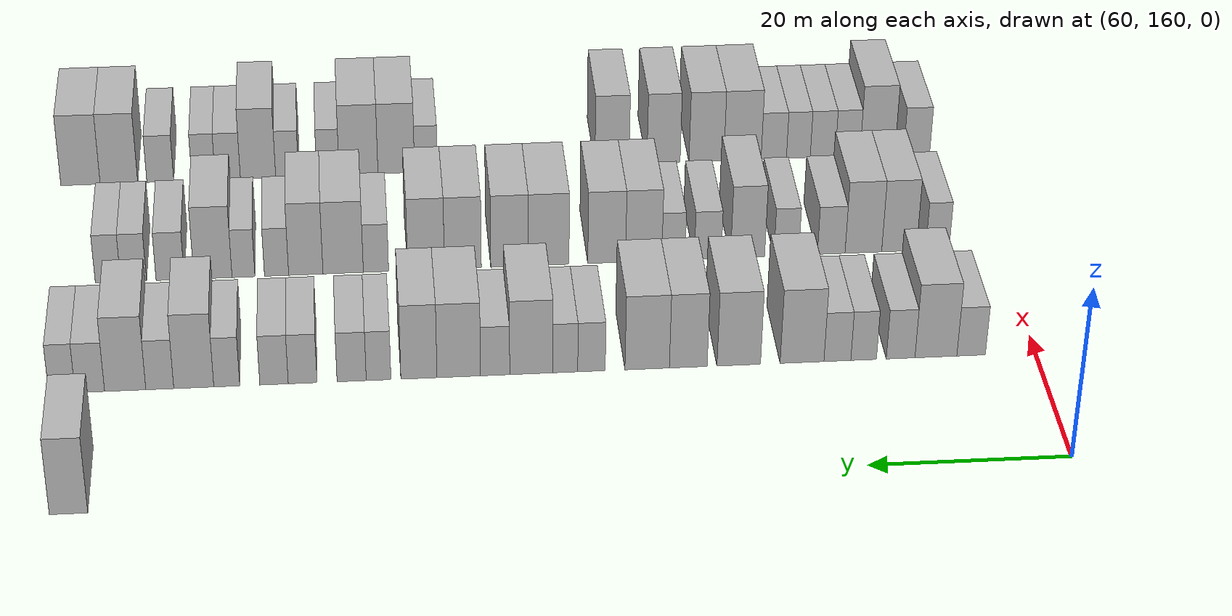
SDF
<sdf version="1.6">
 <world name="default">
  <model name="building_504">
   <static>1</static>
   <pose>63.0000 256.5765 0 0.000000 0.000000 0.000000</pose>
   <link name="link">
    <pose>0 0 4.50 0 0 0</pose>
    <collision name="collision"><geometry><box><size>10.0000 3.6197 9.0000</size></box></geometry></collision>
    <visual name="visual">
     <cast_shadows>0</cast_shadows>
     <geometry><box><size>10.0000 3.6197 9.0000</size></box></geometry>
     <material>
      <script>
       <uri>model://HANNAS_wall/materials/scripts</uri>
       <uri>model://HANNAS_wall/materials/textures</uri>
       <name>vrc/HANNAS_wall</name>
      </script>
     </material>
    </visual>
   </link>
  </model>
  <model name="building_655">
   <static>1</static>
   <pose>82.0000 166.6512 0 0.000000 0.000000 0.000000</pose>
   <link name="link">
    <pose>0 0 3.00 0 0 0</pose>
    <collision name="collision"><geometry><box><size>10.0000 2.9291 6.0000</size></box></geometry></collision>
    <visual name="visual">
     <cast_shadows>0</cast_shadows>
     <geometry><box><size>10.0000 2.9291 6.0000</size></box></geometry>
     <material>
      <script>
       <uri>model://HANNAS_wall/materials/scripts</uri>
       <uri>model://HANNAS_wall/materials/textures</uri>
       <name>vrc/HANNAS_wall</name>
      </script>
     </material>
    </visual>
   </link>
  </model>
  <model name="building_656">
   <static>1</static>
   <pose>82.0000 170.2599 0 0.000000 0.000000 0.000000</pose>
   <link name="link">
    <pose>0 0 4.50 0 0 0</pose>
    <collision name="collision"><geometry><box><size>10.0000 4.2883 9.0000</size></box></geometry></collision>
    <visual name="visual">
     <cast_shadows>0</cast_shadows>
     <geometry><box><size>10.0000 4.2883 9.0000</size></box></geometry>
     <material>
      <script>
       <uri>model://HANNAS_wall/materials/scripts</uri>
       <uri>model://HANNAS_wall/materials/textures</uri>
       <name>vrc/HANNAS_wall</name>
      </script>
     </material>
    </visual>
   </link>
  </model>
  <model name="building_657">
   <static>1</static>
   <pose>82.0000 173.8707 0 0.000000 0.000000 0.000000</pose>
   <link name="link">
    <pose>0 0 3.00 0 0 0</pose>
    <collision name="collision"><geometry><box><size>10.0000 2.9333 6.0000</size></box></geometry></collision>
    <visual name="visual">
     <cast_shadows>0</cast_shadows>
     <geometry><box><size>10.0000 2.9333 6.0000</size></box></geometry>
     <material>
      <script>
       <uri>model://HANNAS_wall/materials/scripts</uri>
       <uri>model://HANNAS_wall/materials/textures</uri>
       <name>vrc/HANNAS_wall</name>
      </script>
     </material>
    </visual>
   </link>
  </model>
  <model name="building_658">
   <static>1</static>
   <pose>82.0000 177.6490 0 0.000000 0.000000 0.000000</pose>
   <link name="link">
    <pose>0 0 3.00 0 0 0</pose>
    <collision name="collision"><geometry><box><size>10.0000 2.6233 6.0000</size></box></geometry></collision>
    <visual name="visual">
     <cast_shadows>0</cast_shadows>
     <geometry><box><size>10.0000 2.6233 6.0000</size></box></geometry>
     <material>
      <script>
       <uri>model://HANNAS_wall/materials/scripts</uri>
       <uri>model://HANNAS_wall/materials/textures</uri>
       <name>vrc/HANNAS_wall</name>
      </script>
     </material>
    </visual>
   </link>
  </model>
  <model name="building_659">
   <static>1</static>
   <pose>82.0000 180.3321 0 0.000000 0.000000 0.000000</pose>
   <link name="link">
    <pose>0 0 3.00 0 0 0</pose>
    <collision name="collision"><geometry><box><size>10.0000 2.7430 6.0000</size></box></geometry></collision>
    <visual name="visual">
     <cast_shadows>0</cast_shadows>
     <geometry><box><size>10.0000 2.7430 6.0000</size></box></geometry>
     <material>
      <script>
       <uri>model://HANNAS_wall/materials/scripts</uri>
       <uri>model://HANNAS_wall/materials/textures</uri>
       <name>vrc/HANNAS_wall</name>
      </script>
     </material>
    </visual>
   </link>
  </model>
  <model name="building_660">
   <static>1</static>
   <pose>82.0000 183.9355 0 0.000000 0.000000 0.000000</pose>
   <link name="link">
    <pose>0 0 4.50 0 0 0</pose>
    <collision name="collision"><geometry><box><size>10.0000 4.4637 9.0000</size></box></geometry></collision>
    <visual name="visual">
     <cast_shadows>0</cast_shadows>
     <geometry><box><size>10.0000 4.4637 9.0000</size></box></geometry>
     <material>
      <script>
       <uri>model://HANNAS_wall/materials/scripts</uri>
       <uri>model://HANNAS_wall/materials/textures</uri>
       <name>vrc/HANNAS_wall</name>
      </script>
     </material>
    </visual>
   </link>
  </model>
  <model name="building_661">
   <static>1</static>
   <pose>82.0000 190.3796 0 0.000000 0.000000 0.000000</pose>
   <link name="link">
    <pose>0 0 4.50 0 0 0</pose>
    <collision name="collision"><geometry><box><size>10.0000 4.4247 9.0000</size></box></geometry></collision>
    <visual name="visual">
     <cast_shadows>0</cast_shadows>
     <geometry><box><size>10.0000 4.4247 9.0000</size></box></geometry>
     <material>
      <script>
       <uri>model://HANNAS_wall/materials/scripts</uri>
       <uri>model://HANNAS_wall/materials/textures</uri>
       <name>vrc/HANNAS_wall</name>
      </script>
     </material>
    </visual>
   </link>
  </model>
  <model name="building_662">
   <static>1</static>
   <pose>82.0000 195.5095 0 0.000000 0.000000 0.000000</pose>
   <link name="link">
    <pose>0 0 4.50 0 0 0</pose>
    <collision name="collision"><geometry><box><size>10.0000 3.8349 9.0000</size></box></geometry></collision>
    <visual name="visual">
     <cast_shadows>0</cast_shadows>
     <geometry><box><size>10.0000 3.8349 9.0000</size></box></geometry>
     <material>
      <script>
       <uri>model://HANNAS_wall/materials/scripts</uri>
       <uri>model://HANNAS_wall/materials/textures</uri>
       <name>vrc/HANNAS_wall</name>
      </script>
     </material>
    </visual>
   </link>
  </model>
  <model name="building_663">
   <static>1</static>
   <pose>82.0000 199.6753 0 0.000000 0.000000 0.000000</pose>
   <link name="link">
    <pose>0 0 4.50 0 0 0</pose>
    <collision name="collision"><geometry><box><size>10.0000 4.4968 9.0000</size></box></geometry></collision>
    <visual name="visual">
     <cast_shadows>0</cast_shadows>
     <geometry><box><size>10.0000 4.4968 9.0000</size></box></geometry>
     <material>
      <script>
       <uri>model://HANNAS_wall/materials/scripts</uri>
       <uri>model://HANNAS_wall/materials/textures</uri>
       <name>vrc/HANNAS_wall</name>
      </script>
     </material>
    </visual>
   </link>
  </model>
  <model name="building_664">
   <static>1</static>
   <pose>82.0000 205.3127 0 0.000000 0.000000 0.000000</pose>
   <link name="link">
    <pose>0 0 3.00 0 0 0</pose>
    <collision name="collision"><geometry><box><size>10.0000 2.7779 6.0000</size></box></geometry></collision>
    <visual name="visual">
     <cast_shadows>0</cast_shadows>
     <geometry><box><size>10.0000 2.7779 6.0000</size></box></geometry>
     <material>
      <script>
       <uri>model://HANNAS_wall/materials/scripts</uri>
       <uri>model://HANNAS_wall/materials/textures</uri>
       <name>vrc/HANNAS_wall</name>
      </script>
     </material>
    </visual>
   </link>
  </model>
  <model name="building_665">
   <static>1</static>
   <pose>82.0000 207.9608 0 0.000000 0.000000 0.000000</pose>
   <link name="link">
    <pose>0 0 3.00 0 0 0</pose>
    <collision name="collision"><geometry><box><size>10.0000 2.5184 6.0000</size></box></geometry></collision>
    <visual name="visual">
     <cast_shadows>0</cast_shadows>
     <geometry><box><size>10.0000 2.5184 6.0000</size></box></geometry>
     <material>
      <script>
       <uri>model://HANNAS_wall/materials/scripts</uri>
       <uri>model://HANNAS_wall/materials/textures</uri>
       <name>vrc/HANNAS_wall</name>
      </script>
     </material>
    </visual>
   </link>
  </model>
  <model name="building_666">
   <static>1</static>
   <pose>82.0000 211.3915 0 0.000000 0.000000 0.000000</pose>
   <link name="link">
    <pose>0 0 4.50 0 0 0</pose>
    <collision name="collision"><geometry><box><size>10.0000 4.3431 9.0000</size></box></geometry></collision>
    <visual name="visual">
     <cast_shadows>0</cast_shadows>
     <geometry><box><size>10.0000 4.3431 9.0000</size></box></geometry>
     <material>
      <script>
       <uri>model://HANNAS_wall/materials/scripts</uri>
       <uri>model://HANNAS_wall/materials/textures</uri>
       <name>vrc/HANNAS_wall</name>
      </script>
     </material>
    </visual>
   </link>
  </model>
  <model name="building_667">
   <static>1</static>
   <pose>82.0000 215.0327 0 0.000000 0.000000 0.000000</pose>
   <link name="link">
    <pose>0 0 3.00 0 0 0</pose>
    <collision name="collision"><geometry><box><size>10.0000 2.9393 6.0000</size></box></geometry></collision>
    <visual name="visual">
     <cast_shadows>0</cast_shadows>
     <geometry><box><size>10.0000 2.9393 6.0000</size></box></geometry>
     <material>
      <script>
       <uri>model://HANNAS_wall/materials/scripts</uri>
       <uri>model://HANNAS_wall/materials/textures</uri>
       <name>vrc/HANNAS_wall</name>
      </script>
     </material>
    </visual>
   </link>
  </model>
  <model name="building_668">
   <static>1</static>
   <pose>82.0000 218.6918 0 0.000000 0.000000 0.000000</pose>
   <link name="link">
    <pose>0 0 4.50 0 0 0</pose>
    <collision name="collision"><geometry><box><size>10.0000 4.3788 9.0000</size></box></geometry></collision>
    <visual name="visual">
     <cast_shadows>0</cast_shadows>
     <geometry><box><size>10.0000 4.3788 9.0000</size></box></geometry>
     <material>
      <script>
       <uri>model://HANNAS_wall/materials/scripts</uri>
       <uri>model://HANNAS_wall/materials/textures</uri>
       <name>vrc/HANNAS_wall</name>
      </script>
     </material>
    </visual>
   </link>
  </model>
  <model name="building_669">
   <static>1</static>
   <pose>82.0000 222.6955 0 0.000000 0.000000 0.000000</pose>
   <link name="link">
    <pose>0 0 4.50 0 0 0</pose>
    <collision name="collision"><geometry><box><size>10.0000 3.6286 9.0000</size></box></geometry></collision>
    <visual name="visual">
     <cast_shadows>0</cast_shadows>
     <geometry><box><size>10.0000 3.6286 9.0000</size></box></geometry>
     <material>
      <script>
       <uri>model://HANNAS_wall/materials/scripts</uri>
       <uri>model://HANNAS_wall/materials/textures</uri>
       <name>vrc/HANNAS_wall</name>
      </script>
     </material>
    </visual>
   </link>
  </model>
  <model name="building_670">
   <static>1</static>
   <pose>82.0000 226.7478 0 0.000000 0.000000 0.000000</pose>
   <link name="link">
    <pose>0 0 3.00 0 0 0</pose>
    <collision name="collision"><geometry><box><size>10.0000 2.4759 6.0000</size></box></geometry></collision>
    <visual name="visual">
     <cast_shadows>0</cast_shadows>
     <geometry><box><size>10.0000 2.4759 6.0000</size></box></geometry>
     <material>
      <script>
       <uri>model://HANNAS_wall/materials/scripts</uri>
       <uri>model://HANNAS_wall/materials/textures</uri>
       <name>vrc/HANNAS_wall</name>
      </script>
     </material>
    </visual>
   </link>
  </model>
  <model name="building_671">
   <static>1</static>
   <pose>82.0000 229.4458 0 0.000000 0.000000 0.000000</pose>
   <link name="link">
    <pose>0 0 3.00 0 0 0</pose>
    <collision name="collision"><geometry><box><size>10.0000 2.9202 6.0000</size></box></geometry></collision>
    <visual name="visual">
     <cast_shadows>0</cast_shadows>
     <geometry><box><size>10.0000 2.9202 6.0000</size></box></geometry>
     <material>
      <script>
       <uri>model://HANNAS_wall/materials/scripts</uri>
       <uri>model://HANNAS_wall/materials/textures</uri>
       <name>vrc/HANNAS_wall</name>
      </script>
     </material>
    </visual>
   </link>
  </model>
  <model name="building_672">
   <static>1</static>
   <pose>82.0000 234.3489 0 0.000000 0.000000 0.000000</pose>
   <link name="link">
    <pose>0 0 3.00 0 0 0</pose>
    <collision name="collision"><geometry><box><size>10.0000 2.8859 6.0000</size></box></geometry></collision>
    <visual name="visual">
     <cast_shadows>0</cast_shadows>
     <geometry><box><size>10.0000 2.8859 6.0000</size></box></geometry>
     <material>
      <script>
       <uri>model://HANNAS_wall/materials/scripts</uri>
       <uri>model://HANNAS_wall/materials/textures</uri>
       <name>vrc/HANNAS_wall</name>
      </script>
     </material>
    </visual>
   </link>
  </model>
  <model name="building_673">
   <static>1</static>
   <pose>82.0000 237.2113 0 0.000000 0.000000 0.000000</pose>
   <link name="link">
    <pose>0 0 3.00 0 0 0</pose>
    <collision name="collision"><geometry><box><size>10.0000 2.8389 6.0000</size></box></geometry></collision>
    <visual name="visual">
     <cast_shadows>0</cast_shadows>
     <geometry><box><size>10.0000 2.8389 6.0000</size></box></geometry>
     <material>
      <script>
       <uri>model://HANNAS_wall/materials/scripts</uri>
       <uri>model://HANNAS_wall/materials/textures</uri>
       <name>vrc/HANNAS_wall</name>
      </script>
     </material>
    </visual>
   </link>
  </model>
  <model name="building_674">
   <static>1</static>
   <pose>82.0000 241.9272 0 0.000000 0.000000 0.000000</pose>
   <link name="link">
    <pose>0 0 3.00 0 0 0</pose>
    <collision name="collision"><geometry><box><size>10.0000 2.5930 6.0000</size></box></geometry></collision>
    <visual name="visual">
     <cast_shadows>0</cast_shadows>
     <geometry><box><size>10.0000 2.5930 6.0000</size></box></geometry>
     <material>
      <script>
       <uri>model://HANNAS_wall/materials/scripts</uri>
       <uri>model://HANNAS_wall/materials/textures</uri>
       <name>vrc/HANNAS_wall</name>
      </script>
     </material>
    </visual>
   </link>
  </model>
  <model name="building_675">
   <static>1</static>
   <pose>82.0000 245.2169 0 0.000000 0.000000 0.000000</pose>
   <link name="link">
    <pose>0 0 4.50 0 0 0</pose>
    <collision name="collision"><geometry><box><size>10.0000 3.9865 9.0000</size></box></geometry></collision>
    <visual name="visual">
     <cast_shadows>0</cast_shadows>
     <geometry><box><size>10.0000 3.9865 9.0000</size></box></geometry>
     <material>
      <script>
       <uri>model://HANNAS_wall/materials/scripts</uri>
       <uri>model://HANNAS_wall/materials/textures</uri>
       <name>vrc/HANNAS_wall</name>
      </script>
     </material>
    </visual>
   </link>
  </model>
  <model name="building_676">
   <static>1</static>
   <pose>82.0000 248.6009 0 0.000000 0.000000 0.000000</pose>
   <link name="link">
    <pose>0 0 3.00 0 0 0</pose>
    <collision name="collision"><geometry><box><size>10.0000 2.7814 6.0000</size></box></geometry></collision>
    <visual name="visual">
     <cast_shadows>0</cast_shadows>
     <geometry><box><size>10.0000 2.7814 6.0000</size></box></geometry>
     <material>
      <script>
       <uri>model://HANNAS_wall/materials/scripts</uri>
       <uri>model://HANNAS_wall/materials/textures</uri>
       <name>vrc/HANNAS_wall</name>
      </script>
     </material>
    </visual>
   </link>
  </model>
  <model name="building_677">
   <static>1</static>
   <pose>82.0000 252.0395 0 0.000000 0.000000 0.000000</pose>
   <link name="link">
    <pose>0 0 4.50 0 0 0</pose>
    <collision name="collision"><geometry><box><size>10.0000 4.0957 9.0000</size></box></geometry></collision>
    <visual name="visual">
     <cast_shadows>0</cast_shadows>
     <geometry><box><size>10.0000 4.0957 9.0000</size></box></geometry>
     <material>
      <script>
       <uri>model://HANNAS_wall/materials/scripts</uri>
       <uri>model://HANNAS_wall/materials/textures</uri>
       <name>vrc/HANNAS_wall</name>
      </script>
     </material>
    </visual>
   </link>
  </model>
  <model name="building_678">
   <static>1</static>
   <pose>82.0000 255.5500 0 0.000000 0.000000 0.000000</pose>
   <link name="link">
    <pose>0 0 3.00 0 0 0</pose>
    <collision name="collision"><geometry><box><size>10.0000 2.9252 6.0000</size></box></geometry></collision>
    <visual name="visual">
     <cast_shadows>0</cast_shadows>
     <geometry><box><size>10.0000 2.9252 6.0000</size></box></geometry>
     <material>
      <script>
       <uri>model://HANNAS_wall/materials/scripts</uri>
       <uri>model://HANNAS_wall/materials/textures</uri>
       <name>vrc/HANNAS_wall</name>
      </script>
     </material>
    </visual>
   </link>
  </model>
  <model name="building_679">
   <static>1</static>
   <pose>82.0000 258.3167 0 0.000000 0.000000 0.000000</pose>
   <link name="link">
    <pose>0 0 3.00 0 0 0</pose>
    <collision name="collision"><geometry><box><size>10.0000 2.6082 6.0000</size></box></geometry></collision>
    <visual name="visual">
     <cast_shadows>0</cast_shadows>
     <geometry><box><size>10.0000 2.6082 6.0000</size></box></geometry>
     <material>
      <script>
       <uri>model://HANNAS_wall/materials/scripts</uri>
       <uri>model://HANNAS_wall/materials/textures</uri>
       <name>vrc/HANNAS_wall</name>
      </script>
     </material>
    </visual>
   </link>
  </model>
  <model name="building_831">
   <static>1</static>
   <pose>101.0000 166.6531 0 0.000000 0.000000 0.000000</pose>
   <link name="link">
    <pose>0 0 3.00 0 0 0</pose>
    <collision name="collision"><geometry><box><size>10.0000 2.5217 6.0000</size></box></geometry></collision>
    <visual name="visual">
     <cast_shadows>0</cast_shadows>
     <geometry><box><size>10.0000 2.5217 6.0000</size></box></geometry>
     <material>
      <script>
       <uri>model://HANNAS_wall/materials/scripts</uri>
       <uri>model://HANNAS_wall/materials/textures</uri>
       <name>vrc/HANNAS_wall</name>
      </script>
     </material>
    </visual>
   </link>
  </model>
  <model name="building_832">
   <static>1</static>
   <pose>101.0000 170.7813 0 0.000000 0.000000 0.000000</pose>
   <link name="link">
    <pose>0 0 4.50 0 0 0</pose>
    <collision name="collision"><geometry><box><size>10.0000 3.7348 9.0000</size></box></geometry></collision>
    <visual name="visual">
     <cast_shadows>0</cast_shadows>
     <geometry><box><size>10.0000 3.7348 9.0000</size></box></geometry>
     <material>
      <script>
       <uri>model://HANNAS_wall/materials/scripts</uri>
       <uri>model://HANNAS_wall/materials/textures</uri>
       <name>vrc/HANNAS_wall</name>
      </script>
     </material>
    </visual>
   </link>
  </model>
  <model name="building_833">
   <static>1</static>
   <pose>101.0000 174.6163 0 0.000000 0.000000 0.000000</pose>
   <link name="link">
    <pose>0 0 4.50 0 0 0</pose>
    <collision name="collision"><geometry><box><size>10.0000 3.9351 9.0000</size></box></geometry></collision>
    <visual name="visual">
     <cast_shadows>0</cast_shadows>
     <geometry><box><size>10.0000 3.9351 9.0000</size></box></geometry>
     <material>
      <script>
       <uri>model://HANNAS_wall/materials/scripts</uri>
       <uri>model://HANNAS_wall/materials/textures</uri>
       <name>vrc/HANNAS_wall</name>
      </script>
     </material>
    </visual>
   </link>
  </model>
  <model name="building_834">
   <static>1</static>
   <pose>101.0000 178.0666 0 0.000000 0.000000 0.000000</pose>
   <link name="link">
    <pose>0 0 3.00 0 0 0</pose>
    <collision name="collision"><geometry><box><size>10.0000 2.9654 6.0000</size></box></geometry></collision>
    <visual name="visual">
     <cast_shadows>0</cast_shadows>
     <geometry><box><size>10.0000 2.9654 6.0000</size></box></geometry>
     <material>
      <script>
       <uri>model://HANNAS_wall/materials/scripts</uri>
       <uri>model://HANNAS_wall/materials/textures</uri>
       <name>vrc/HANNAS_wall</name>
      </script>
     </material>
    </visual>
   </link>
  </model>
  <model name="building_835">
   <static>1</static>
   <pose>101.0000 182.8773 0 0.000000 0.000000 0.000000</pose>
   <link name="link">
    <pose>0 0 3.00 0 0 0</pose>
    <collision name="collision"><geometry><box><size>10.0000 2.6560 6.0000</size></box></geometry></collision>
    <visual name="visual">
     <cast_shadows>0</cast_shadows>
     <geometry><box><size>10.0000 2.6560 6.0000</size></box></geometry>
     <material>
      <script>
       <uri>model://HANNAS_wall/materials/scripts</uri>
       <uri>model://HANNAS_wall/materials/textures</uri>
       <name>vrc/HANNAS_wall</name>
      </script>
     </material>
    </visual>
   </link>
  </model>
  <model name="building_836">
   <static>1</static>
   <pose>101.0000 187.0284 0 0.000000 0.000000 0.000000</pose>
   <link name="link">
    <pose>0 0 4.50 0 0 0</pose>
    <collision name="collision"><geometry><box><size>10.0000 3.6461 9.0000</size></box></geometry></collision>
    <visual name="visual">
     <cast_shadows>0</cast_shadows>
     <geometry><box><size>10.0000 3.6461 9.0000</size></box></geometry>
     <material>
      <script>
       <uri>model://HANNAS_wall/materials/scripts</uri>
       <uri>model://HANNAS_wall/materials/textures</uri>
       <name>vrc/HANNAS_wall</name>
      </script>
     </material>
    </visual>
   </link>
  </model>
  <model name="building_837">
   <static>1</static>
   <pose>101.0000 191.2860 0 0.000000 0.000000 0.000000</pose>
   <link name="link">
    <pose>0 0 3.00 0 0 0</pose>
    <collision name="collision"><geometry><box><size>10.0000 2.8691 6.0000</size></box></geometry></collision>
    <visual name="visual">
     <cast_shadows>0</cast_shadows>
     <geometry><box><size>10.0000 2.8691 6.0000</size></box></geometry>
     <material>
      <script>
       <uri>model://HANNAS_wall/materials/scripts</uri>
       <uri>model://HANNAS_wall/materials/textures</uri>
       <name>vrc/HANNAS_wall</name>
      </script>
     </material>
    </visual>
   </link>
  </model>
  <model name="building_838">
   <static>1</static>
   <pose>101.0000 194.9580 0 0.000000 0.000000 0.000000</pose>
   <link name="link">
    <pose>0 0 3.00 0 0 0</pose>
    <collision name="collision"><geometry><box><size>10.0000 2.4750 6.0000</size></box></geometry></collision>
    <visual name="visual">
     <cast_shadows>0</cast_shadows>
     <geometry><box><size>10.0000 2.4750 6.0000</size></box></geometry>
     <material>
      <script>
       <uri>model://HANNAS_wall/materials/scripts</uri>
       <uri>model://HANNAS_wall/materials/textures</uri>
       <name>vrc/HANNAS_wall</name>
      </script>
     </material>
    </visual>
   </link>
  </model>
  <model name="building_839">
   <static>1</static>
   <pose>101.0000 198.1276 0 0.000000 0.000000 0.000000</pose>
   <link name="link">
    <pose>0 0 4.50 0 0 0</pose>
    <collision name="collision"><geometry><box><size>10.0000 3.8642 9.0000</size></box></geometry></collision>
    <visual name="visual">
     <cast_shadows>0</cast_shadows>
     <geometry><box><size>10.0000 3.8642 9.0000</size></box></geometry>
     <material>
      <script>
       <uri>model://HANNAS_wall/materials/scripts</uri>
       <uri>model://HANNAS_wall/materials/textures</uri>
       <name>vrc/HANNAS_wall</name>
      </script>
     </material>
    </visual>
   </link>
  </model>
  <model name="building_840">
   <static>1</static>
   <pose>101.0000 202.0664 0 0.000000 0.000000 0.000000</pose>
   <link name="link">
    <pose>0 0 4.50 0 0 0</pose>
    <collision name="collision"><geometry><box><size>10.0000 4.0134 9.0000</size></box></geometry></collision>
    <visual name="visual">
     <cast_shadows>0</cast_shadows>
     <geometry><box><size>10.0000 4.0134 9.0000</size></box></geometry>
     <material>
      <script>
       <uri>model://HANNAS_wall/materials/scripts</uri>
       <uri>model://HANNAS_wall/materials/textures</uri>
       <name>vrc/HANNAS_wall</name>
      </script>
     </material>
    </visual>
   </link>
  </model>
  <model name="building_841">
   <static>1</static>
   <pose>101.0000 208.2307 0 0.000000 0.000000 0.000000</pose>
   <link name="link">
    <pose>0 0 4.50 0 0 0</pose>
    <collision name="collision"><geometry><box><size>10.0000 4.3152 9.0000</size></box></geometry></collision>
    <visual name="visual">
     <cast_shadows>0</cast_shadows>
     <geometry><box><size>10.0000 4.3152 9.0000</size></box></geometry>
     <material>
      <script>
       <uri>model://HANNAS_wall/materials/scripts</uri>
       <uri>model://HANNAS_wall/materials/textures</uri>
       <name>vrc/HANNAS_wall</name>
      </script>
     </material>
    </visual>
   </link>
  </model>
  <model name="building_842">
   <static>1</static>
   <pose>101.0000 212.3771 0 0.000000 0.000000 0.000000</pose>
   <link name="link">
    <pose>0 0 4.50 0 0 0</pose>
    <collision name="collision"><geometry><box><size>10.0000 3.9775 9.0000</size></box></geometry></collision>
    <visual name="visual">
     <cast_shadows>0</cast_shadows>
     <geometry><box><size>10.0000 3.9775 9.0000</size></box></geometry>
     <material>
      <script>
       <uri>model://HANNAS_wall/materials/scripts</uri>
       <uri>model://HANNAS_wall/materials/textures</uri>
       <name>vrc/HANNAS_wall</name>
      </script>
     </material>
    </visual>
   </link>
  </model>
  <model name="building_843">
   <static>1</static>
   <pose>101.0000 217.3185 0 0.000000 0.000000 0.000000</pose>
   <link name="link">
    <pose>0 0 4.50 0 0 0</pose>
    <collision name="collision"><geometry><box><size>10.0000 3.9053 9.0000</size></box></geometry></collision>
    <visual name="visual">
     <cast_shadows>0</cast_shadows>
     <geometry><box><size>10.0000 3.9053 9.0000</size></box></geometry>
     <material>
      <script>
       <uri>model://HANNAS_wall/materials/scripts</uri>
       <uri>model://HANNAS_wall/materials/textures</uri>
       <name>vrc/HANNAS_wall</name>
      </script>
     </material>
    </visual>
   </link>
  </model>
  <model name="building_844">
   <static>1</static>
   <pose>101.0000 221.2189 0 0.000000 0.000000 0.000000</pose>
   <link name="link">
    <pose>0 0 4.50 0 0 0</pose>
    <collision name="collision"><geometry><box><size>10.0000 3.8954 9.0000</size></box></geometry></collision>
    <visual name="visual">
     <cast_shadows>0</cast_shadows>
     <geometry><box><size>10.0000 3.8954 9.0000</size></box></geometry>
     <material>
      <script>
       <uri>model://HANNAS_wall/materials/scripts</uri>
       <uri>model://HANNAS_wall/materials/textures</uri>
       <name>vrc/HANNAS_wall</name>
      </script>
     </material>
    </visual>
   </link>
  </model>
  <model name="building_845">
   <static>1</static>
   <pose>101.0000 226.5001 0 0.000000 0.000000 0.000000</pose>
   <link name="link">
    <pose>0 0 3.00 0 0 0</pose>
    <collision name="collision"><geometry><box><size>10.0000 2.6672 6.0000</size></box></geometry></collision>
    <visual name="visual">
     <cast_shadows>0</cast_shadows>
     <geometry><box><size>10.0000 2.6672 6.0000</size></box></geometry>
     <material>
      <script>
       <uri>model://HANNAS_wall/materials/scripts</uri>
       <uri>model://HANNAS_wall/materials/textures</uri>
       <name>vrc/HANNAS_wall</name>
      </script>
     </material>
    </visual>
   </link>
  </model>
  <model name="building_846">
   <static>1</static>
   <pose>101.0000 229.9576 0 0.000000 0.000000 0.000000</pose>
   <link name="link">
    <pose>0 0 4.50 0 0 0</pose>
    <collision name="collision"><geometry><box><size>10.0000 4.2476 9.0000</size></box></geometry></collision>
    <visual name="visual">
     <cast_shadows>0</cast_shadows>
     <geometry><box><size>10.0000 4.2476 9.0000</size></box></geometry>
     <material>
      <script>
       <uri>model://HANNAS_wall/materials/scripts</uri>
       <uri>model://HANNAS_wall/materials/textures</uri>
       <name>vrc/HANNAS_wall</name>
      </script>
     </material>
    </visual>
   </link>
  </model>
  <model name="building_847">
   <static>1</static>
   <pose>101.0000 233.8884 0 0.000000 0.000000 0.000000</pose>
   <link name="link">
    <pose>0 0 4.50 0 0 0</pose>
    <collision name="collision"><geometry><box><size>10.0000 3.6141 9.0000</size></box></geometry></collision>
    <visual name="visual">
     <cast_shadows>0</cast_shadows>
     <geometry><box><size>10.0000 3.6141 9.0000</size></box></geometry>
     <material>
      <script>
       <uri>model://HANNAS_wall/materials/scripts</uri>
       <uri>model://HANNAS_wall/materials/textures</uri>
       <name>vrc/HANNAS_wall</name>
      </script>
     </material>
    </visual>
   </link>
  </model>
  <model name="building_848">
   <static>1</static>
   <pose>101.0000 236.9658 0 0.000000 0.000000 0.000000</pose>
   <link name="link">
    <pose>0 0 3.00 0 0 0</pose>
    <collision name="collision"><geometry><box><size>10.0000 2.5407 6.0000</size></box></geometry></collision>
    <visual name="visual">
     <cast_shadows>0</cast_shadows>
     <geometry><box><size>10.0000 2.5407 6.0000</size></box></geometry>
     <material>
      <script>
       <uri>model://HANNAS_wall/materials/scripts</uri>
       <uri>model://HANNAS_wall/materials/textures</uri>
       <name>vrc/HANNAS_wall</name>
      </script>
     </material>
    </visual>
   </link>
  </model>
  <model name="building_849">
   <static>1</static>
   <pose>101.0000 240.4393 0 0.000000 0.000000 0.000000</pose>
   <link name="link">
    <pose>0 0 3.00 0 0 0</pose>
    <collision name="collision"><geometry><box><size>10.0000 2.4063 6.0000</size></box></geometry></collision>
    <visual name="visual">
     <cast_shadows>0</cast_shadows>
     <geometry><box><size>10.0000 2.4063 6.0000</size></box></geometry>
     <material>
      <script>
       <uri>model://HANNAS_wall/materials/scripts</uri>
       <uri>model://HANNAS_wall/materials/textures</uri>
       <name>vrc/HANNAS_wall</name>
      </script>
     </material>
    </visual>
   </link>
  </model>
  <model name="building_850">
   <static>1</static>
   <pose>101.0000 243.6386 0 0.000000 0.000000 0.000000</pose>
   <link name="link">
    <pose>0 0 4.50 0 0 0</pose>
    <collision name="collision"><geometry><box><size>10.0000 3.9924 9.0000</size></box></geometry></collision>
    <visual name="visual">
     <cast_shadows>0</cast_shadows>
     <geometry><box><size>10.0000 3.9924 9.0000</size></box></geometry>
     <material>
      <script>
       <uri>model://HANNAS_wall/materials/scripts</uri>
       <uri>model://HANNAS_wall/materials/textures</uri>
       <name>vrc/HANNAS_wall</name>
      </script>
     </material>
    </visual>
   </link>
  </model>
  <model name="building_851">
   <static>1</static>
   <pose>101.0000 248.1157 0 0.000000 0.000000 0.000000</pose>
   <link name="link">
    <pose>0 0 3.00 0 0 0</pose>
    <collision name="collision"><geometry><box><size>10.0000 2.9619 6.0000</size></box></geometry></collision>
    <visual name="visual">
     <cast_shadows>0</cast_shadows>
     <geometry><box><size>10.0000 2.9619 6.0000</size></box></geometry>
     <material>
      <script>
       <uri>model://HANNAS_wall/materials/scripts</uri>
       <uri>model://HANNAS_wall/materials/textures</uri>
       <name>vrc/HANNAS_wall</name>
      </script>
     </material>
    </visual>
   </link>
  </model>
  <model name="building_852">
   <static>1</static>
   <pose>101.0000 251.9497 0 0.000000 0.000000 0.000000</pose>
   <link name="link">
    <pose>0 0 3.00 0 0 0</pose>
    <collision name="collision"><geometry><box><size>10.0000 2.7061 6.0000</size></box></geometry></collision>
    <visual name="visual">
     <cast_shadows>0</cast_shadows>
     <geometry><box><size>10.0000 2.7061 6.0000</size></box></geometry>
     <material>
      <script>
       <uri>model://HANNAS_wall/materials/scripts</uri>
       <uri>model://HANNAS_wall/materials/textures</uri>
       <name>vrc/HANNAS_wall</name>
      </script>
     </material>
    </visual>
   </link>
  </model>
  <model name="building_853">
   <static>1</static>
   <pose>101.0000 254.6270 0 0.000000 0.000000 0.000000</pose>
   <link name="link">
    <pose>0 0 3.00 0 0 0</pose>
    <collision name="collision"><geometry><box><size>10.0000 2.6485 6.0000</size></box></geometry></collision>
    <visual name="visual">
     <cast_shadows>0</cast_shadows>
     <geometry><box><size>10.0000 2.6485 6.0000</size></box></geometry>
     <material>
      <script>
       <uri>model://HANNAS_wall/materials/scripts</uri>
       <uri>model://HANNAS_wall/materials/textures</uri>
       <name>vrc/HANNAS_wall</name>
      </script>
     </material>
    </visual>
   </link>
  </model>
  <model name="building_1005">
   <static>1</static>
   <pose>120.0000 165.5358 0 0.000000 0.000000 0.000000</pose>
   <link name="link">
    <pose>0 0 3.00 0 0 0</pose>
    <collision name="collision"><geometry><box><size>10.0000 2.9482 6.0000</size></box></geometry></collision>
    <visual name="visual">
     <cast_shadows>0</cast_shadows>
     <geometry><box><size>10.0000 2.9482 6.0000</size></box></geometry>
     <material>
      <script>
       <uri>model://HANNAS_wall/materials/scripts</uri>
       <uri>model://HANNAS_wall/materials/textures</uri>
       <name>vrc/HANNAS_wall</name>
      </script>
     </material>
    </visual>
   </link>
  </model>
  <model name="building_1006">
   <static>1</static>
   <pose>120.0000 169.9748 0 0.000000 0.000000 0.000000</pose>
   <link name="link">
    <pose>0 0 4.50 0 0 0</pose>
    <collision name="collision"><geometry><box><size>10.0000 3.9298 9.0000</size></box></geometry></collision>
    <visual name="visual">
     <cast_shadows>0</cast_shadows>
     <geometry><box><size>10.0000 3.9298 9.0000</size></box></geometry>
     <material>
      <script>
       <uri>model://HANNAS_wall/materials/scripts</uri>
       <uri>model://HANNAS_wall/materials/textures</uri>
       <name>vrc/HANNAS_wall</name>
      </script>
     </material>
    </visual>
   </link>
  </model>
  <model name="building_1007">
   <static>1</static>
   <pose>120.0000 173.3279 0 0.000000 0.000000 0.000000</pose>
   <link name="link">
    <pose>0 0 3.00 0 0 0</pose>
    <collision name="collision"><geometry><box><size>10.0000 2.7763 6.0000</size></box></geometry></collision>
    <visual name="visual">
     <cast_shadows>0</cast_shadows>
     <geometry><box><size>10.0000 2.7763 6.0000</size></box></geometry>
     <material>
      <script>
       <uri>model://HANNAS_wall/materials/scripts</uri>
       <uri>model://HANNAS_wall/materials/textures</uri>
       <name>vrc/HANNAS_wall</name>
      </script>
     </material>
    </visual>
   </link>
  </model>
  <model name="building_1008">
   <static>1</static>
   <pose>120.0000 176.1249 0 0.000000 0.000000 0.000000</pose>
   <link name="link">
    <pose>0 0 3.00 0 0 0</pose>
    <collision name="collision"><geometry><box><size>10.0000 2.8179 6.0000</size></box></geometry></collision>
    <visual name="visual">
     <cast_shadows>0</cast_shadows>
     <geometry><box><size>10.0000 2.8179 6.0000</size></box></geometry>
     <material>
      <script>
       <uri>model://HANNAS_wall/materials/scripts</uri>
       <uri>model://HANNAS_wall/materials/textures</uri>
       <name>vrc/HANNAS_wall</name>
      </script>
     </material>
    </visual>
   </link>
  </model>
  <model name="building_1009">
   <static>1</static>
   <pose>120.0000 178.8735 0 0.000000 0.000000 0.000000</pose>
   <link name="link">
    <pose>0 0 3.00 0 0 0</pose>
    <collision name="collision"><geometry><box><size>10.0000 2.6793 6.0000</size></box></geometry></collision>
    <visual name="visual">
     <cast_shadows>0</cast_shadows>
     <geometry><box><size>10.0000 2.6793 6.0000</size></box></geometry>
     <material>
      <script>
       <uri>model://HANNAS_wall/materials/scripts</uri>
       <uri>model://HANNAS_wall/materials/textures</uri>
       <name>vrc/HANNAS_wall</name>
      </script>
     </material>
    </visual>
   </link>
  </model>
  <model name="building_1010">
   <static>1</static>
   <pose>120.0000 181.6359 0 0.000000 0.000000 0.000000</pose>
   <link name="link">
    <pose>0 0 3.00 0 0 0</pose>
    <collision name="collision"><geometry><box><size>10.0000 2.8455 6.0000</size></box></geometry></collision>
    <visual name="visual">
     <cast_shadows>0</cast_shadows>
     <geometry><box><size>10.0000 2.8455 6.0000</size></box></geometry>
     <material>
      <script>
       <uri>model://HANNAS_wall/materials/scripts</uri>
       <uri>model://HANNAS_wall/materials/textures</uri>
       <name>vrc/HANNAS_wall</name>
      </script>
     </material>
    </visual>
   </link>
  </model>
  <model name="building_1011">
   <static>1</static>
   <pose>120.0000 185.1512 0 0.000000 0.000000 0.000000</pose>
   <link name="link">
    <pose>0 0 4.50 0 0 0</pose>
    <collision name="collision"><geometry><box><size>10.0000 4.1851 9.0000</size></box></geometry></collision>
    <visual name="visual">
     <cast_shadows>0</cast_shadows>
     <geometry><box><size>10.0000 4.1851 9.0000</size></box></geometry>
     <material>
      <script>
       <uri>model://HANNAS_wall/materials/scripts</uri>
       <uri>model://HANNAS_wall/materials/textures</uri>
       <name>vrc/HANNAS_wall</name>
      </script>
     </material>
    </visual>
   </link>
  </model>
  <model name="building_1012">
   <static>1</static>
   <pose>120.0000 189.1959 0 0.000000 0.000000 0.000000</pose>
   <link name="link">
    <pose>0 0 4.50 0 0 0</pose>
    <collision name="collision"><geometry><box><size>10.0000 3.9042 9.0000</size></box></geometry></collision>
    <visual name="visual">
     <cast_shadows>0</cast_shadows>
     <geometry><box><size>10.0000 3.9042 9.0000</size></box></geometry>
     <material>
      <script>
       <uri>model://HANNAS_wall/materials/scripts</uri>
       <uri>model://HANNAS_wall/materials/textures</uri>
       <name>vrc/HANNAS_wall</name>
      </script>
     </material>
    </visual>
   </link>
  </model>
  <model name="building_1013">
   <static>1</static>
   <pose>120.0000 194.0044 0 0.000000 0.000000 0.000000</pose>
   <link name="link">
    <pose>0 0 4.50 0 0 0</pose>
    <collision name="collision"><geometry><box><size>10.0000 3.7128 9.0000</size></box></geometry></collision>
    <visual name="visual">
     <cast_shadows>0</cast_shadows>
     <geometry><box><size>10.0000 3.7128 9.0000</size></box></geometry>
     <material>
      <script>
       <uri>model://HANNAS_wall/materials/scripts</uri>
       <uri>model://HANNAS_wall/materials/textures</uri>
       <name>vrc/HANNAS_wall</name>
      </script>
     </material>
    </visual>
   </link>
  </model>
  <model name="building_1014">
   <static>1</static>
   <pose>120.0000 199.7639 0 0.000000 0.000000 0.000000</pose>
   <link name="link">
    <pose>0 0 4.50 0 0 0</pose>
    <collision name="collision"><geometry><box><size>10.0000 3.8062 9.0000</size></box></geometry></collision>
    <visual name="visual">
     <cast_shadows>0</cast_shadows>
     <geometry><box><size>10.0000 3.8062 9.0000</size></box></geometry>
     <material>
      <script>
       <uri>model://HANNAS_wall/materials/scripts</uri>
       <uri>model://HANNAS_wall/materials/textures</uri>
       <name>vrc/HANNAS_wall</name>
      </script>
     </material>
    </visual>
   </link>
  </model>
  <model name="building_1015">
   <static>1</static>
   <pose>120.0000 220.4580 0 0.000000 0.000000 0.000000</pose>
   <link name="link">
    <pose>0 0 3.00 0 0 0</pose>
    <collision name="collision"><geometry><box><size>10.0000 2.5273 6.0000</size></box></geometry></collision>
    <visual name="visual">
     <cast_shadows>0</cast_shadows>
     <geometry><box><size>10.0000 2.5273 6.0000</size></box></geometry>
     <material>
      <script>
       <uri>model://HANNAS_wall/materials/scripts</uri>
       <uri>model://HANNAS_wall/materials/textures</uri>
       <name>vrc/HANNAS_wall</name>
      </script>
     </material>
    </visual>
   </link>
  </model>
  <model name="building_1016">
   <static>1</static>
   <pose>120.0000 223.7499 0 0.000000 0.000000 0.000000</pose>
   <link name="link">
    <pose>0 0 4.50 0 0 0</pose>
    <collision name="collision"><geometry><box><size>10.0000 4.0564 9.0000</size></box></geometry></collision>
    <visual name="visual">
     <cast_shadows>0</cast_shadows>
     <geometry><box><size>10.0000 4.0564 9.0000</size></box></geometry>
     <material>
      <script>
       <uri>model://HANNAS_wall/materials/scripts</uri>
       <uri>model://HANNAS_wall/materials/textures</uri>
       <name>vrc/HANNAS_wall</name>
      </script>
     </material>
    </visual>
   </link>
  </model>
  <model name="building_1017">
   <static>1</static>
   <pose>120.0000 227.9168 0 0.000000 0.000000 0.000000</pose>
   <link name="link">
    <pose>0 0 4.50 0 0 0</pose>
    <collision name="collision"><geometry><box><size>10.0000 4.2775 9.0000</size></box></geometry></collision>
    <visual name="visual">
     <cast_shadows>0</cast_shadows>
     <geometry><box><size>10.0000 4.2775 9.0000</size></box></geometry>
     <material>
      <script>
       <uri>model://HANNAS_wall/materials/scripts</uri>
       <uri>model://HANNAS_wall/materials/textures</uri>
       <name>vrc/HANNAS_wall</name>
      </script>
     </material>
    </visual>
   </link>
  </model>
  <model name="building_1018">
   <static>1</static>
   <pose>120.0000 231.2926 0 0.000000 0.000000 0.000000</pose>
   <link name="link">
    <pose>0 0 3.00 0 0 0</pose>
    <collision name="collision"><geometry><box><size>10.0000 2.4739 6.0000</size></box></geometry></collision>
    <visual name="visual">
     <cast_shadows>0</cast_shadows>
     <geometry><box><size>10.0000 2.4739 6.0000</size></box></geometry>
     <material>
      <script>
       <uri>model://HANNAS_wall/materials/scripts</uri>
       <uri>model://HANNAS_wall/materials/textures</uri>
       <name>vrc/HANNAS_wall</name>
      </script>
     </material>
    </visual>
   </link>
  </model>
  <model name="building_1019">
   <static>1</static>
   <pose>120.0000 235.8002 0 0.000000 0.000000 0.000000</pose>
   <link name="link">
    <pose>0 0 3.00 0 0 0</pose>
    <collision name="collision"><geometry><box><size>10.0000 2.5414 6.0000</size></box></geometry></collision>
    <visual name="visual">
     <cast_shadows>0</cast_shadows>
     <geometry><box><size>10.0000 2.5414 6.0000</size></box></geometry>
     <material>
      <script>
       <uri>model://HANNAS_wall/materials/scripts</uri>
       <uri>model://HANNAS_wall/materials/textures</uri>
       <name>vrc/HANNAS_wall</name>
      </script>
     </material>
    </visual>
   </link>
  </model>
  <model name="building_1020">
   <static>1</static>
   <pose>120.0000 239.0163 0 0.000000 0.000000 0.000000</pose>
   <link name="link">
    <pose>0 0 4.50 0 0 0</pose>
    <collision name="collision"><geometry><box><size>10.0000 3.8906 9.0000</size></box></geometry></collision>
    <visual name="visual">
     <cast_shadows>0</cast_shadows>
     <geometry><box><size>10.0000 3.8906 9.0000</size></box></geometry>
     <material>
      <script>
       <uri>model://HANNAS_wall/materials/scripts</uri>
       <uri>model://HANNAS_wall/materials/textures</uri>
       <name>vrc/HANNAS_wall</name>
      </script>
     </material>
    </visual>
   </link>
  </model>
  <model name="building_1021">
   <static>1</static>
   <pose>120.0000 242.3475 0 0.000000 0.000000 0.000000</pose>
   <link name="link">
    <pose>0 0 3.00 0 0 0</pose>
    <collision name="collision"><geometry><box><size>10.0000 2.7718 6.0000</size></box></geometry></collision>
    <visual name="visual">
     <cast_shadows>0</cast_shadows>
     <geometry><box><size>10.0000 2.7718 6.0000</size></box></geometry>
     <material>
      <script>
       <uri>model://HANNAS_wall/materials/scripts</uri>
       <uri>model://HANNAS_wall/materials/textures</uri>
       <name>vrc/HANNAS_wall</name>
      </script>
     </material>
    </visual>
   </link>
  </model>
  <model name="building_1022">
   <static>1</static>
   <pose>120.0000 245.0103 0 0.000000 0.000000 0.000000</pose>
   <link name="link">
    <pose>0 0 3.00 0 0 0</pose>
    <collision name="collision"><geometry><box><size>10.0000 2.5539 6.0000</size></box></geometry></collision>
    <visual name="visual">
     <cast_shadows>0</cast_shadows>
     <geometry><box><size>10.0000 2.5539 6.0000</size></box></geometry>
     <material>
      <script>
       <uri>model://HANNAS_wall/materials/scripts</uri>
       <uri>model://HANNAS_wall/materials/textures</uri>
       <name>vrc/HANNAS_wall</name>
      </script>
     </material>
    </visual>
   </link>
  </model>
  <model name="building_1023">
   <static>1</static>
   <pose>120.0000 249.7652 0 0.000000 0.000000 0.000000</pose>
   <link name="link">
    <pose>0 0 3.00 0 0 0</pose>
    <collision name="collision"><geometry><box><size>10.0000 2.9557 6.0000</size></box></geometry></collision>
    <visual name="visual">
     <cast_shadows>0</cast_shadows>
     <geometry><box><size>10.0000 2.9557 6.0000</size></box></geometry>
     <material>
      <script>
       <uri>model://HANNAS_wall/materials/scripts</uri>
       <uri>model://HANNAS_wall/materials/textures</uri>
       <name>vrc/HANNAS_wall</name>
      </script>
     </material>
    </visual>
   </link>
  </model>
  <model name="building_1024">
   <static>1</static>
   <pose>120.0000 254.3037 0 0.000000 0.000000 0.000000</pose>
   <link name="link">
    <pose>0 0 4.50 0 0 0</pose>
    <collision name="collision"><geometry><box><size>10.0000 4.1213 9.0000</size></box></geometry></collision>
    <visual name="visual">
     <cast_shadows>0</cast_shadows>
     <geometry><box><size>10.0000 4.1213 9.0000</size></box></geometry>
     <material>
      <script>
       <uri>model://HANNAS_wall/materials/scripts</uri>
       <uri>model://HANNAS_wall/materials/textures</uri>
       <name>vrc/HANNAS_wall</name>
      </script>
     </material>
    </visual>
   </link>
  </model>
  <model name="building_1025">
   <static>1</static>
   <pose>120.0000 258.5147 0 0.000000 0.000000 0.000000</pose>
   <link name="link">
    <pose>0 0 4.50 0 0 0</pose>
    <collision name="collision"><geometry><box><size>10.0000 4.3007 9.0000</size></box></geometry></collision>
    <visual name="visual">
     <cast_shadows>0</cast_shadows>
     <geometry><box><size>10.0000 4.3007 9.0000</size></box></geometry>
     <material>
      <script>
       <uri>model://HANNAS_wall/materials/scripts</uri>
       <uri>model://HANNAS_wall/materials/textures</uri>
       <name>vrc/HANNAS_wall</name>
      </script>
     </material>
    </visual>
   </link>
  </model>
 </world>
</sdf>
